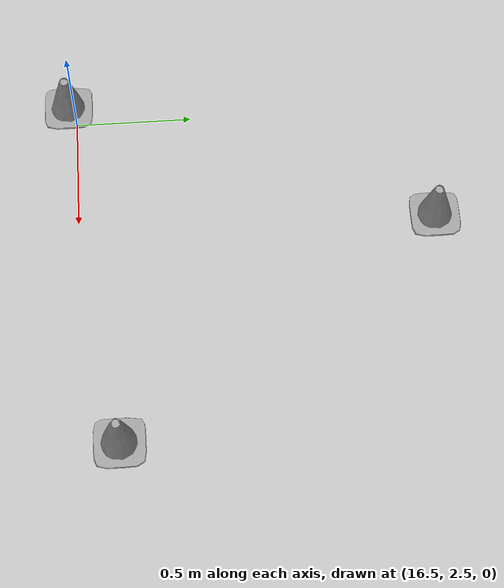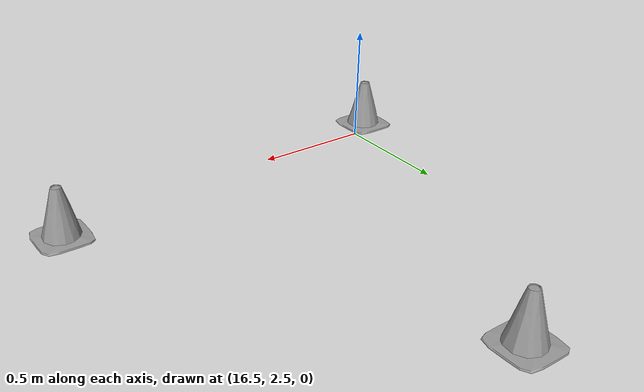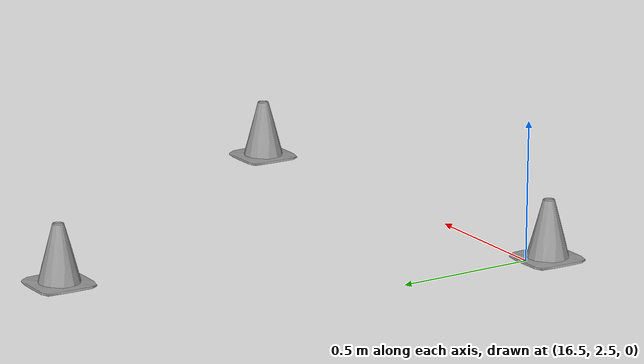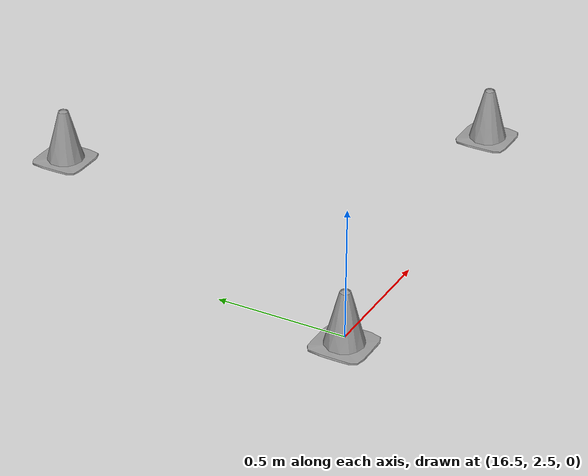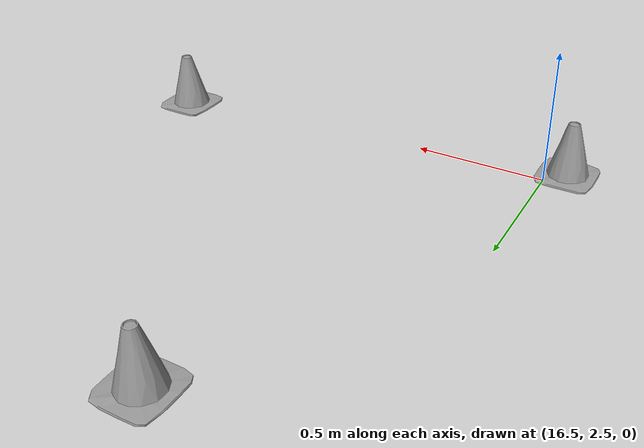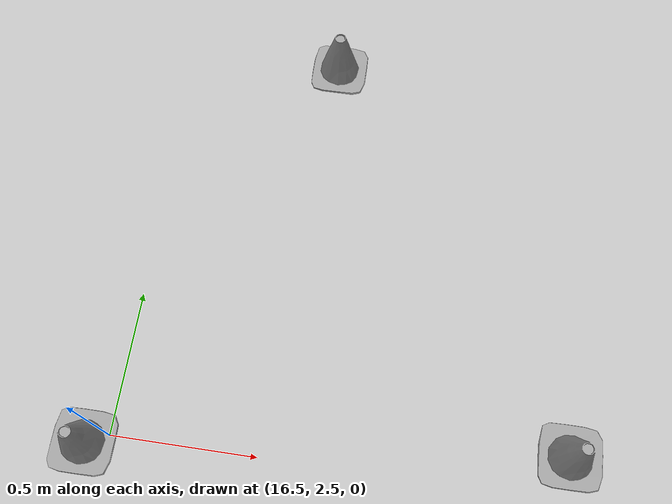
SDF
<sdf version="1.6">
 <world name="default">
  <model name="cone_mini_clone_4_clone_6_clone_1">
   <link name="link_1">
    <inertial>
     <mass>1</mass>
     <inertia>
      <ixx>0.166667</ixx>
      <ixy>0</ixy>
      <ixz>0</ixz>
      <iyy>0.166667</iyy>
      <iyz>0</iyz>
      <izz>0.166667</izz>
     </inertia>
    </inertial>
    <visual name="visual">
     <geometry>
      <mesh>
       <uri>/home/martin/catkin_ws/src/mybot/src/mybot_description/meshes/Cone/Cone_mini.dae</uri>
       <scale>1 1 1</scale>
      </mesh>
     </geometry>
     <material>
      <lighting>1</lighting>
      <script><uri>file://media/materials/scripts/gazebo.material</uri><name>Gazebo/Grey</name></script>
      <ambient>0.3 0.3 0.3 1</ambient>
      <diffuse>0.7 0.7 0.7 1</diffuse>
      <specular>0.01 0.01 0.01 1</specular>
      <emissive>0 0 0 1</emissive>
     </material>
    </visual>
    <collision name="collision">
     <geometry>
      <mesh>
       <uri>/home/martin/catkin_ws/src/mybot/src/mybot_description/meshes/Cone/Cone_mini.dae</uri>
       <scale>1 1 1</scale>
      </mesh>
     </geometry>
     <surface>
      <friction>
       <ode><mu>1</mu><mu2>1</mu2><fdir1>0 0 0</fdir1><slip1>0</slip1><slip2>0</slip2></ode>
       <torsional>
        <coefficient>1</coefficient>
        <patch_radius>0</patch_radius>
        <surface_radius>0</surface_radius>
        <use_patch_radius>1</use_patch_radius>
        <ode><slip>0</slip></ode>
       </torsional>
      </friction>
      <bounce><restitution_coefficient>0</restitution_coefficient><threshold>1e+06</threshold></bounce>
      <contact>
       <collide_without_contact>0</collide_without_contact>
       <collide_without_contact_bitmask>1</collide_without_contact_bitmask>
       <collide_bitmask>1</collide_bitmask>
       <ode>
        <soft_cfm>0</soft_cfm>
        <soft_erp>0.2</soft_erp>
        <kp>1e+13</kp>
        <kd>1</kd>
        <max_vel>0.01</max_vel>
        <min_depth>0</min_depth>
       </ode>
       <bullet>
        <split_impulse>1</split_impulse>
        <split_impulse_penetration_threshold>-0.01</split_impulse_penetration_threshold>
        <soft_cfm>0</soft_cfm>
        <soft_erp>0.2</soft_erp>
        <kp>1e+13</kp>
        <kd>1</kd>
       </bullet>
      </contact>
     </surface>
    </collision>
   </link>
   <static>1</static>
   <pose>16.4251 2.86355 -0.627558 0 -0 0</pose>
  </model>
  <model name="cone_mini_clone_4_clone_6_clone_2">
   <link name="link_1">
    <inertial>
     <mass>1</mass>
     <inertia>
      <ixx>0.166667</ixx>
      <ixy>0</ixy>
      <ixz>0</ixz>
      <iyy>0.166667</iyy>
      <iyz>0</iyz>
      <izz>0.166667</izz>
     </inertia>
    </inertial>
    <visual name="visual">
     <geometry>
      <mesh>
       <uri>/home/martin/catkin_ws/src/mybot/src/mybot_description/meshes/Cone/Cone_mini.dae</uri>
       <scale>1 1 1</scale>
      </mesh>
     </geometry>
     <material>
      <lighting>1</lighting>
      <script><uri>file://media/materials/scripts/gazebo.material</uri><name>Gazebo/Grey</name></script>
      <ambient>0.3 0.3 0.3 1</ambient>
      <diffuse>0.7 0.7 0.7 1</diffuse>
      <specular>0.01 0.01 0.01 1</specular>
      <emissive>0 0 0 1</emissive>
     </material>
    </visual>
    <collision name="collision">
     <geometry>
      <mesh>
       <uri>/home/martin/catkin_ws/src/mybot/src/mybot_description/meshes/Cone/Cone_mini.dae</uri>
       <scale>1 1 1</scale>
      </mesh>
     </geometry>
     <surface>
      <friction>
       <ode><mu>1</mu><mu2>1</mu2><fdir1>0 0 0</fdir1><slip1>0</slip1><slip2>0</slip2></ode>
       <torsional>
        <coefficient>1</coefficient>
        <patch_radius>0</patch_radius>
        <surface_radius>0</surface_radius>
        <use_patch_radius>1</use_patch_radius>
        <ode><slip>0</slip></ode>
       </torsional>
      </friction>
      <bounce><restitution_coefficient>0</restitution_coefficient><threshold>1e+06</threshold></bounce>
      <contact>
       <collide_without_contact>0</collide_without_contact>
       <collide_without_contact_bitmask>1</collide_without_contact_bitmask>
       <collide_bitmask>1</collide_bitmask>
       <ode>
        <soft_cfm>0</soft_cfm>
        <soft_erp>0.2</soft_erp>
        <kp>1e+13</kp>
        <kd>1</kd>
        <max_vel>0.01</max_vel>
        <min_depth>0</min_depth>
       </ode>
       <bullet>
        <split_impulse>1</split_impulse>
        <split_impulse_penetration_threshold>-0.01</split_impulse_penetration_threshold>
        <soft_cfm>0</soft_cfm>
        <soft_erp>0.2</soft_erp>
        <kp>1e+13</kp>
        <kd>1</kd>
       </bullet>
      </contact>
     </surface>
    </collision>
   </link>
   <static>1</static>
   <pose>17.0607 4.41509 -0.627558 0 -0 0</pose>
  </model>
  <model name="cone_mini_clone_4_clone_6_clone_4">
   <link name="link_1">
    <inertial>
     <mass>1</mass>
     <inertia>
      <ixx>0.166667</ixx>
      <ixy>0</ixy>
      <ixz>0</ixz>
      <iyy>0.166667</iyy>
      <iyz>0</iyz>
      <izz>0.166667</izz>
     </inertia>
    </inertial>
    <visual name="visual">
     <geometry>
      <mesh>
       <uri>/home/martin/catkin_ws/src/mybot/src/mybot_description/meshes/Cone/Cone_mini.dae</uri>
       <scale>1 1 1</scale>
      </mesh>
     </geometry>
     <material>
      <lighting>1</lighting>
      <script><uri>file://media/materials/scripts/gazebo.material</uri><name>Gazebo/Grey</name></script>
      <ambient>0.3 0.3 0.3 1</ambient>
      <diffuse>0.7 0.7 0.7 1</diffuse>
      <specular>0.01 0.01 0.01 1</specular>
      <emissive>0 0 0 1</emissive>
     </material>
    </visual>
    <collision name="collision">
     <geometry>
      <mesh>
       <uri>/home/martin/catkin_ws/src/mybot/src/mybot_description/meshes/Cone/Cone_mini.dae</uri>
       <scale>1 1 1</scale>
      </mesh>
     </geometry>
     <surface>
      <friction>
       <ode><mu>1</mu><mu2>1</mu2><fdir1>0 0 0</fdir1><slip1>0</slip1><slip2>0</slip2></ode>
       <torsional>
        <coefficient>1</coefficient>
        <patch_radius>0</patch_radius>
        <surface_radius>0</surface_radius>
        <use_patch_radius>1</use_patch_radius>
        <ode><slip>0</slip></ode>
       </torsional>
      </friction>
      <bounce><restitution_coefficient>0</restitution_coefficient><threshold>1e+06</threshold></bounce>
      <contact>
       <collide_without_contact>0</collide_without_contact>
       <collide_without_contact_bitmask>1</collide_without_contact_bitmask>
       <collide_bitmask>1</collide_bitmask>
       <ode>
        <soft_cfm>0</soft_cfm>
        <soft_erp>0.2</soft_erp>
        <kp>1e+13</kp>
        <kd>1</kd>
        <max_vel>0.01</max_vel>
        <min_depth>0</min_depth>
       </ode>
       <bullet>
        <split_impulse>1</split_impulse>
        <split_impulse_penetration_threshold>-0.01</split_impulse_penetration_threshold>
        <soft_cfm>0</soft_cfm>
        <soft_erp>0.2</soft_erp>
        <kp>1e+13</kp>
        <kd>1</kd>
       </bullet>
      </contact>
     </surface>
    </collision>
   </link>
   <static>1</static>
   <pose>18.0145 3.04633 -0.627558 0 -0 0</pose>
  </model>
 </world>
</sdf>
